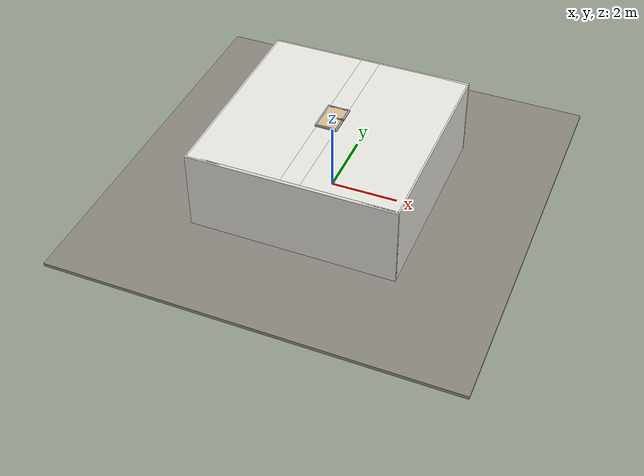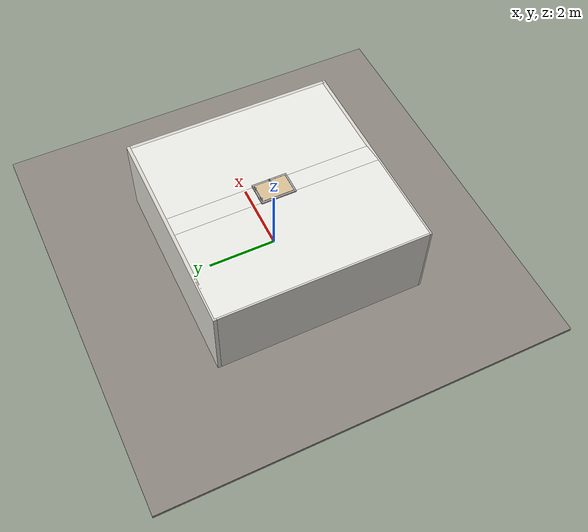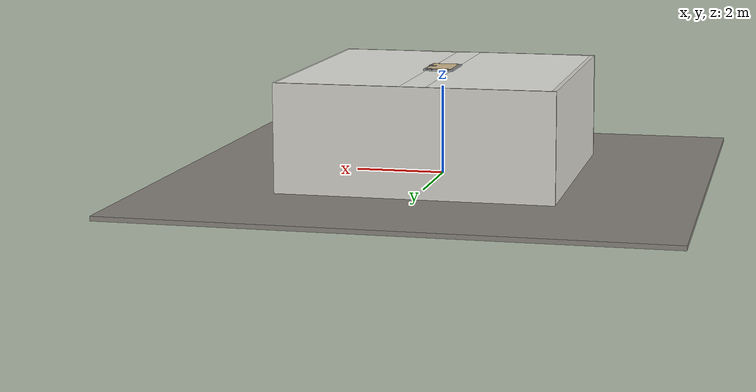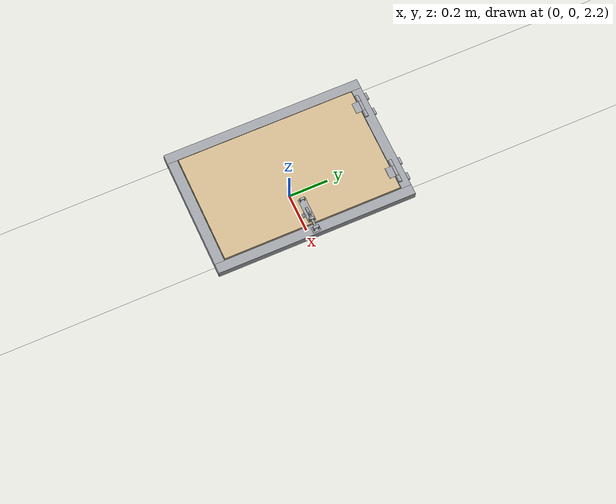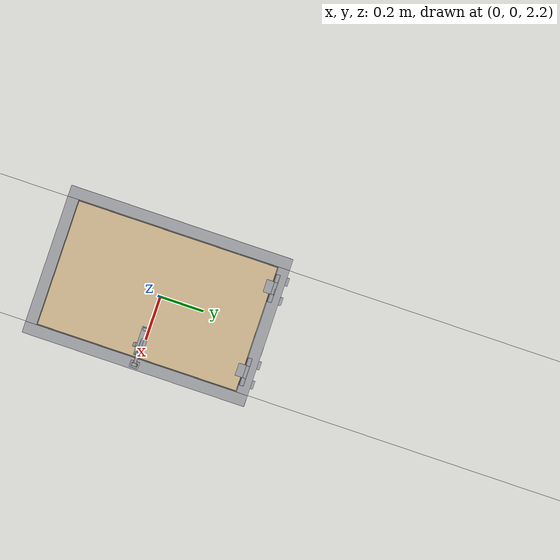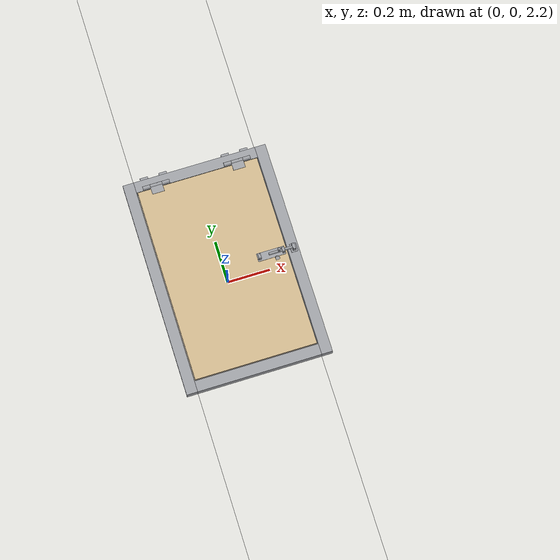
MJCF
<?xml version="1.0" ?>
<mujoco model="db0389_hatch_ceiling_full">
  <compiler angle="radian" meshdir="../../hardware" texturedir="../../textures" autolimits="true" inertiafromgeom="false"/>
  <option timestep="0.002" integrator="implicitfast" cone="elliptic" impratio="10" noslip_iterations="3">
    <flag multiccd="enable"/>
  </option>
  <size memory="16M"/>
  <default>
    <geom condim="4" solref="0.005 1" solimp="0.95 0.99 0.001"/>
    <joint solreflimit="0.005 1" solimplimit="0.95 0.99 0.001"/>
    <tendon solreflimit="0.005 1"/>
    <equality solref="0.002 1"/>
  </default>
  <visual>
    <headlight ambient="0.4 0.4 0.4" diffuse="0.7 0.7 0.7" specular="0.2 0.2 0.2"/>
    <quality shadowsize="4096"/>
    <map znear="0.01" zfar="60"/>
  </visual>
  <asset>
    <material name="mat_floor" rgba="0.55 0.53 0.5 1" specular="0.2" shininess="0.15" reflectance="0"/>
    <material name="mat_wall" rgba="0.78 0.76 0.7 1" specular="0.2" shininess="0.1" reflectance="0"/>
    <material name="mat_ceiling" rgba="0.92 0.92 0.9 1" specular="0.2" shininess="0.1" reflectance="0"/>
    <material name="mat_room_wall" rgba="0.86 0.85 0.82 1" specular="0.2" shininess="0.1" reflectance="0"/>
    <material name="mat_frame" rgba="0.65 0.66 0.68 1" specular="0.74" shininess="0.5" reflectance="0.36"/>
    <material name="mat_leaf" rgba="0.85 0.75 0.58 1" specular="0.2" shininess="0.4" reflectance="0"/>
    <material name="mat_hinge" rgba="0.65 0.66 0.68 1" specular="0.74" shininess="0.5" reflectance="0.36"/>
    <material name="mat_op_steel_galvanized" rgba="0.65 0.66 0.68 1" specular="0.74" shininess="0.5" reflectance="0.36"/>
    <material name="mat_strut" rgba="0.75 0.76 0.77 1" specular="0.8" shininess="0.65" reflectance="0.4"/>
    <material name="mat_bolt" rgba="0.65 0.66 0.68 1" specular="0.74" shininess="0.5" reflectance="0.36"/>
    <texture name="skybox" type="skybox" builtin="gradient" rgb1="0.6 0.7 0.85" rgb2="0.9 0.92 0.95" width="256" height="256"/>
  </asset>
  <worldbody>
    <light name="sun" pos="1.5 -2.5 4" dir="-0.3 0.5 -0.8" directional="true" diffuse="0.8 0.8 0.8" specular="0.3 0.3 0.3" castshadow="true"/>
    <light name="fill" pos="-1.5 2.5 3" dir="0.3 -0.5 -0.7" directional="true" diffuse="0.35 0.35 0.4" castshadow="false"/>
    <camera name="robot_view" pos="0 -1.875 3.38" xyaxes="1 0 0 0 0.26963 0.962964" fovy="52"/>
    <camera name="far_view" pos="0 1.875 3.38" xyaxes="-1 0 0 0 -0.26963 0.962964" fovy="52"/>
    <camera name="iso" pos="1.425 -1.575 3.68" xyaxes="0.741536 0.670913 0 -0.242917 0.268487 0.932151" fovy="46"/>
    <camera name="detail_handle" pos="0.35 -0.7375 1.578" xyaxes="0.843661 0.536875 0 0.426006 -0.669439 0.608581" fovy="38"/>
    <geom name="floor" type="box" size="6 6 0.05" pos="0 0 -0.05" material="mat_floor" group="0" contype="1" conaffinity="1" friction="0.8 0.005 0.0001" density="2400"/>
    <geom name="ceil_a" type="box" size="1.3575 3 0.05" pos="-1.6425 0 2.35" material="mat_ceiling" group="0" contype="1" conaffinity="1" friction="0.6 0.005 0.0001" density="600"/>
    <geom name="ceil_b" type="box" size="1.3575 3 0.05" pos="1.6425 0 2.35" material="mat_ceiling" group="0" contype="1" conaffinity="1" friction="0.6 0.005 0.0001" density="600"/>
    <geom name="ceil_c" type="box" size="0.285 1.2725 0.05" pos="0 -1.7275 2.35" material="mat_ceiling" group="0" contype="1" conaffinity="1" friction="0.6 0.005 0.0001" density="600"/>
    <geom name="ceil_d" type="box" size="0.285 1.2725 0.05" pos="0 1.7275 2.35" material="mat_ceiling" group="0" contype="1" conaffinity="1" friction="0.6 0.005 0.0001" density="600"/>
    <geom name="room_wall_l" type="box" size="0.05 3 1.2" pos="-3 0 1.2" material="mat_room_wall" group="0" contype="1" conaffinity="1" friction="0.6 0.005 0.0001" density="800"/>
    <geom name="room_wall_r" type="box" size="0.05 3 1.2" pos="3 0 1.2" material="mat_room_wall" group="0" contype="1" conaffinity="1" friction="0.6 0.005 0.0001" density="800"/>
    <geom name="room_wall_n" type="box" size="3.05 0.05 1.2" pos="0 -3 1.2" material="mat_room_wall" group="0" contype="1" conaffinity="1" friction="0.6 0.005 0.0001" density="800"/>
    <geom name="room_wall_f" type="box" size="3.05 0.05 1.2" pos="0 3 1.2" material="mat_room_wall" group="0" contype="1" conaffinity="1" friction="0.6 0.005 0.0001" density="800"/>
    <geom name="curb_l" type="box" size="0.025 0.505 0.02" pos="-0.31 0 2.42" material="mat_frame" group="0" contype="1" conaffinity="1" friction="0.6 0.005 0.0001" density="7850"/>
    <geom name="curb_r" type="box" size="0.025 0.505 0.02" pos="0.31 0 2.42" material="mat_frame" group="0" contype="1" conaffinity="1" friction="0.6 0.005 0.0001" density="7850"/>
    <geom name="curb_n" type="box" size="0.285 0.025 0.02" pos="0 -0.48 2.42" material="mat_frame" group="0" contype="1" conaffinity="1" friction="0.6 0.005 0.0001" density="7850"/>
    <geom name="curb_f" type="box" size="0.285 0.025 0.02" pos="0 0.48 2.42" material="mat_frame" group="0" contype="1" conaffinity="1" friction="0.6 0.005 0.0001" density="7850"/>
    <geom name="hatch_hinge_0_curb_n" type="cylinder" size="0.01 0.018" pos="-0.234 0.465 2.44" quat="0.707107 0 0.707107 0" material="mat_hinge" group="1" contype="0" conaffinity="0" density="7850"/>
    <geom name="hatch_hinge_0_curb_strap_n" type="box" size="0.018 0.032 0.005" pos="-0.234 0.485 2.43" material="mat_hinge" group="1" contype="0" conaffinity="0" density="7850"/>
    <geom name="hatch_hinge_0_curb_p" type="cylinder" size="0.01 0.018" pos="-0.146 0.465 2.44" quat="0.707107 0 0.707107 0" material="mat_hinge" group="1" contype="0" conaffinity="0" density="7850"/>
    <geom name="hatch_hinge_0_curb_strap_p" type="box" size="0.018 0.032 0.005" pos="-0.146 0.485 2.43" material="mat_hinge" group="1" contype="0" conaffinity="0" density="7850"/>
    <geom name="hatch_hinge_1_curb_n" type="cylinder" size="0.01 0.018" pos="0.146 0.465 2.44" quat="0.707107 0 0.707107 0" material="mat_hinge" group="1" contype="0" conaffinity="0" density="7850"/>
    <geom name="hatch_hinge_1_curb_strap_n" type="box" size="0.018 0.032 0.005" pos="0.146 0.485 2.43" material="mat_hinge" group="1" contype="0" conaffinity="0" density="7850"/>
    <geom name="hatch_hinge_1_curb_p" type="cylinder" size="0.01 0.018" pos="0.234 0.465 2.44" quat="0.707107 0 0.707107 0" material="mat_hinge" group="1" contype="0" conaffinity="0" density="7850"/>
    <geom name="hatch_hinge_1_curb_strap_p" type="box" size="0.018 0.032 0.005" pos="0.234 0.485 2.43" material="mat_hinge" group="1" contype="0" conaffinity="0" density="7850"/>
    <geom name="hatch_bolt_keeper_leg_n" type="box" size="0.007 0.0025 0.015" pos="0.313 -0.0115 2.455" material="mat_bolt" group="0" contype="1" conaffinity="1" friction="0.6 0.005 0.0001" density="7800"/>
    <geom name="hatch_bolt_keeper_leg_p" type="box" size="0.007 0.0025 0.015" pos="0.313 0.0115 2.455" material="mat_bolt" group="0" contype="1" conaffinity="1" friction="0.6 0.005 0.0001" density="7800"/>
    <geom name="hatch_bolt_keeper_bridge" type="box" size="0.007 0.014 0.0025" pos="0.313 0 2.4675" material="mat_bolt" group="0" contype="1" conaffinity="1" friction="0.6 0.005 0.0001" density="7800"/>
    <geom name="hatch_bolt_keeper_base" type="box" size="0.015 0.02 0.001" pos="0.313 0 2.441" material="mat_bolt" group="1" contype="0" conaffinity="0" density="7800"/>
    <site name="approach_point" pos="0 -1.5 0" quat="1 0 0 0" size="0.05" rgba="0.2 0.9 0.2 0.5" group="4"/>
    <site name="goal_point" pos="0 0 2.9" quat="1 0 0 0" size="0.05" rgba="0.2 0.9 0.2 0.5" group="4"/>
    <site name="door_plane_center" pos="0 0 2.4" quat="1 0 0 0" size="0.02" rgba="0.2 0.9 0.2 0.5" group="4"/>
    <body name="hatch" pos="0 0.455 2.44">
      <inertial pos="0.046038 -0.402361 -0.026524" mass="5.59772" quat="0.719204 0.054362 0.077289 0.688343" diaginertia="0.191711615 0.394379154 0.542604585"/>
      <joint name="hatch_hinge" type="hinge" axis="-1 0 0" pos="0 0.01 0" limited="true" range="0 1.396263" damping="30.515985" frictionloss="0.16804" stiffness="25.125" springref="-3.333333" armature="0.02"/>
      <geom name="hatch_slab" type="box" size="0.28 0.451 0.006" pos="0 -0.455 0" material="mat_leaf" group="0" contype="1" conaffinity="1" friction="0.6 0.005 0.0001" density="1"/>
      <geom name="hatch_hinge_0" type="cylinder" size="0.01 0.028" pos="-0.19 0.01 0" quat="0.707107 0 0.707107 0" material="mat_hinge" group="1" contype="0" conaffinity="0" density="7850"/>
      <geom name="hatch_hinge_0_strap" type="box" size="0.028 0.023 0.003" pos="-0.19 -0.007 0.005" material="mat_hinge" group="1" contype="0" conaffinity="0" density="7850"/>
      <geom name="hatch_hinge_1" type="cylinder" size="0.01 0.028" pos="0.19 0.01 0" quat="0.707107 0 0.707107 0" material="mat_hinge" group="1" contype="0" conaffinity="0" density="7850"/>
      <geom name="hatch_hinge_1_strap" type="box" size="0.028 0.023 0.003" pos="0.19 -0.007 0.005" material="mat_hinge" group="1" contype="0" conaffinity="0" density="7850"/>
      <geom name="ring_recess" type="box" size="0.05 0.05 0.001" pos="0 -0.6825 -0.007" material="mat_op_steel_galvanized" group="1" contype="0" conaffinity="0" density="7800"/>
      <geom name="gas_strut" type="cylinder" size="0.01 0.2" pos="0.23 -0.364 -0.15" quat="0.316228 -0.948683 0 0" material="mat_strut" group="1" contype="0" conaffinity="0" density="7900"/>
      <geom name="hatch_bolt_plate" type="box" size="0.064 0.019 0.001" pos="0.208 -0.455 0.007" material="mat_bolt" group="1" contype="0" conaffinity="0" density="7800"/>
      <geom name="hatch_bolt_guide_0_leg_n" type="box" size="0.006 0.002 0.0115" pos="0.264 -0.466 0.0175" material="mat_bolt" group="1" contype="0" conaffinity="0" density="7800"/>
      <geom name="hatch_bolt_guide_0_leg_p" type="box" size="0.006 0.002 0.0115" pos="0.264 -0.444 0.0175" material="mat_bolt" group="1" contype="0" conaffinity="0" density="7800"/>
      <geom name="hatch_bolt_guide_0_bridge" type="box" size="0.006 0.013 0.002" pos="0.264 -0.455 0.027" material="mat_bolt" group="1" contype="0" conaffinity="0" density="7800"/>
      <geom name="hatch_bolt_guide_1_leg_n" type="box" size="0.006 0.002 0.0115" pos="0.154 -0.466 0.0175" material="mat_bolt" group="1" contype="0" conaffinity="0" density="7800"/>
      <geom name="hatch_bolt_guide_1_leg_p" type="box" size="0.006 0.002 0.0115" pos="0.154 -0.444 0.0175" material="mat_bolt" group="1" contype="0" conaffinity="0" density="7800"/>
      <geom name="hatch_bolt_guide_1_bridge" type="box" size="0.006 0.013 0.002" pos="0.154 -0.455 0.027" material="mat_bolt" group="1" contype="0" conaffinity="0" density="7800"/>
      <body name="ring" pos="0 -0.6825 -0.006">
        <inertial pos="0 0.019982 -0.002997" mass="0.2225" quat="0.058307 0.998299 0 0" diaginertia="0.000076951 0.000083485 0.000154999"/>
        <joint name="ring_hinge" type="hinge" axis="-1 0 0" limited="true" range="0 1.5708" damping="0.003272" armature="0.0001"/>
        <geom name="ring_geom" type="capsule" size="0.006 0.035" pos="0 0.04 -0.006" quat="0.707107 0 0.707107 0" material="mat_op_steel_galvanized" group="0" contype="1" conaffinity="1" friction="0.6 0.005 0.0001" density="7800"/>
        <geom name="ring_knuckle" type="cylinder" size="0.008 0.022" pos="0 0 0" quat="0.707107 0 0.707107 0" material="mat_op_steel_galvanized" group="1" contype="0" conaffinity="0" density="7800"/>
        <geom name="ring_arm_n" type="capsule" size="0.006 0.02" pos="-0.02 0.02 -0.003" quat="0.707107 -0.707107 0 0" material="mat_op_steel_galvanized" group="1" contype="0" conaffinity="0" density="7800"/>
        <geom name="ring_arm_p" type="capsule" size="0.006 0.02" pos="0.02 0.02 -0.003" quat="0.707107 -0.707107 0 0" material="mat_op_steel_galvanized" group="1" contype="0" conaffinity="0" density="7800"/>
        <site name="grip_ring" pos="0 0.04 -0.006" quat="1 0 0 0" size="0.01" rgba="0.2 0.9 0.2 0.5" group="4"/>
      </body>
      <body name="hatch_bolt" pos="0.28 -0.455 0.016">
        <inertial pos="-0.026255 0 0.004246" mass="0.12954" quat="0.706926 0.706926 0.016003 -0.016003" diaginertia="0.000013355 0.000119753 0.0001309"/>
        <joint name="hatch_bolt_slide" type="slide" axis="-1 0 0" limited="true" range="0 0.04" damping="1" frictionloss="1" armature="0.1"/>
        <geom name="hatch_bolt_rod" type="capsule" size="0.006 0.054" pos="-0.024 0 0" quat="0.707107 0 0.707107 0" material="mat_bolt" group="0" contype="1" conaffinity="1" friction="0.6 0.005 0.0001" density="7850"/>
        <geom name="hatch_bolt_knob" type="capsule" size="0.005 0.01" pos="-0.035 0 0.015" material="mat_bolt" group="0" contype="1" conaffinity="1" friction="0.6 0.005 0.0001" density="7850"/>
        <geom name="hatch_bolt_knob_end" type="sphere" size="0.00675" pos="-0.035 0 0.03" material="mat_bolt" group="1" contype="0" conaffinity="0" density="7850"/>
        <site name="hatch_bolt_grip" pos="-0.035 0 0.034" quat="1 0 0 0" size="0.012" rgba="0.2 0.9 0.2 0.5" group="4"/>
      </body>
    </body>
  </worldbody>
  <sensor>
    <jointpos name="hatch_hinge_pos" joint="hatch_hinge"/>
    <jointvel name="hatch_hinge_vel" joint="hatch_hinge"/>
    <jointpos name="ring_hinge_pos" joint="ring_hinge"/>
    <jointvel name="ring_hinge_vel" joint="ring_hinge"/>
    <jointpos name="hatch_bolt_slide_pos" joint="hatch_bolt_slide"/>
    <jointvel name="hatch_bolt_slide_vel" joint="hatch_bolt_slide"/>
  </sensor>
</mujoco>
